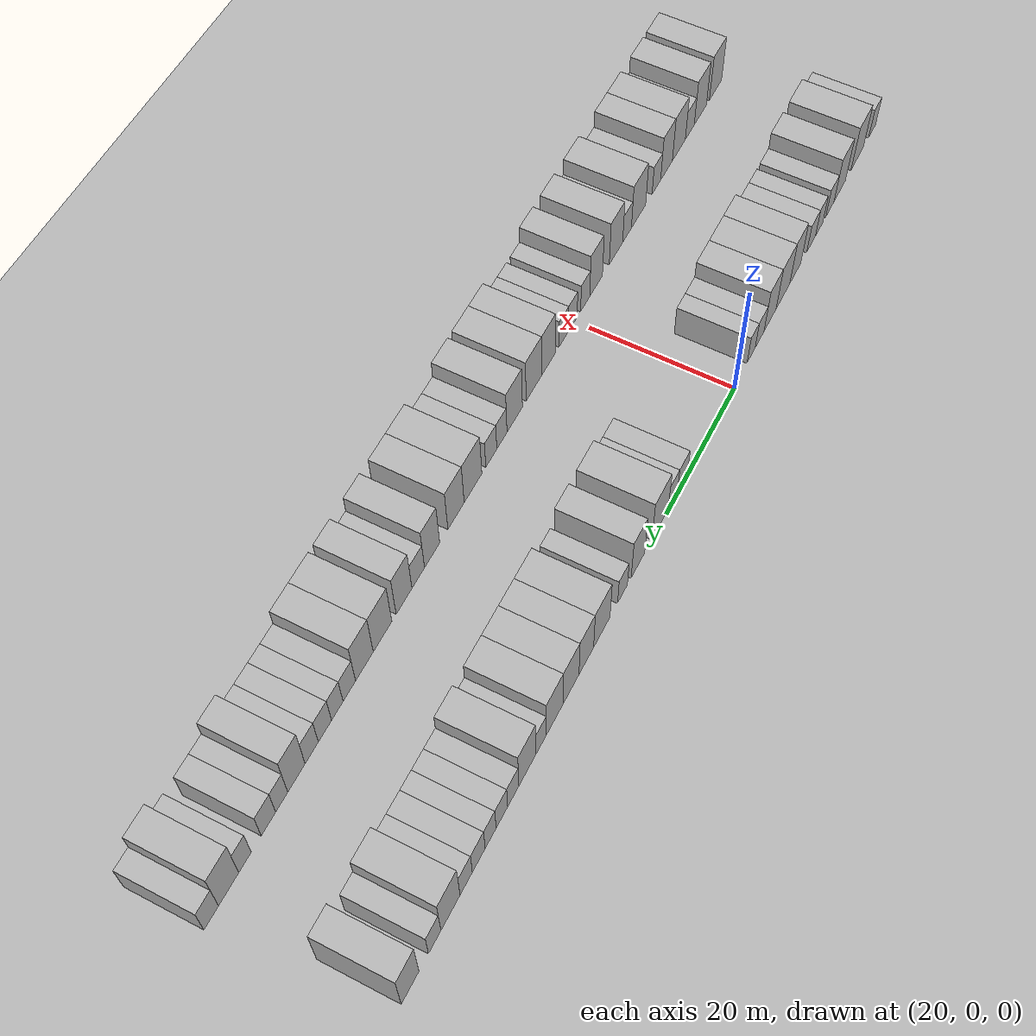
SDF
<sdf version="1.6">
 <world name="default">
  <include><name>ground_plane_1</name><uri>model://HANNAS_ground_plane</uri></include>
  <include>
   <name>ground_plane_2</name>
   <uri>model://HANNAS_ground_plane</uri>
   <pose>100 0 0  0 0 0</pose>
  </include>
  <model name="building_41">
   <static>1</static>
   <pose>25.0000 -46.1972 0 0.000000 0.000000 0.000000</pose>
   <link name="link">
    <pose>0 0 3.00 0 0 0</pose>
    <collision name="collision"><geometry><box><size>10.0000 2.5414 6.0000</size></box></geometry></collision>
    <visual name="visual">
     <cast_shadows>0</cast_shadows>
     <geometry><box><size>10.0000 2.5414 6.0000</size></box></geometry>
     <material>
      <script>
       <uri>model://HANNAS_wall/materials/scripts</uri>
       <uri>model://HANNAS_wall/materials/textures</uri>
       <name>vrc/HANNAS_wall</name>
      </script>
     </material>
    </visual>
   </link>
  </model>
  <model name="building_42">
   <static>1</static>
   <pose>25.0000 -40.7090 0 0.000000 0.000000 0.000000</pose>
   <link name="link">
    <pose>0 0 4.50 0 0 0</pose>
    <collision name="collision"><geometry><box><size>10.0000 4.4350 9.0000</size></box></geometry></collision>
    <visual name="visual">
     <cast_shadows>0</cast_shadows>
     <geometry><box><size>10.0000 4.4350 9.0000</size></box></geometry>
     <material>
      <script>
       <uri>model://HANNAS_wall/materials/scripts</uri>
       <uri>model://HANNAS_wall/materials/textures</uri>
       <name>vrc/HANNAS_wall</name>
      </script>
     </material>
    </visual>
   </link>
  </model>
  <model name="building_43">
   <static>1</static>
   <pose>25.0000 -34.4842 0 0.000000 0.000000 0.000000</pose>
   <link name="link">
    <pose>0 0 4.50 0 0 0</pose>
    <collision name="collision"><geometry><box><size>10.0000 4.0146 9.0000</size></box></geometry></collision>
    <visual name="visual">
     <cast_shadows>0</cast_shadows>
     <geometry><box><size>10.0000 4.0146 9.0000</size></box></geometry>
     <material>
      <script>
       <uri>model://HANNAS_wall/materials/scripts</uri>
       <uri>model://HANNAS_wall/materials/textures</uri>
       <name>vrc/HANNAS_wall</name>
      </script>
     </material>
    </visual>
   </link>
  </model>
  <model name="building_44">
   <static>1</static>
   <pose>25.0000 -31.0404 0 0.000000 0.000000 0.000000</pose>
   <link name="link">
    <pose>0 0 3.00 0 0 0</pose>
    <collision name="collision"><geometry><box><size>10.0000 2.8728 6.0000</size></box></geometry></collision>
    <visual name="visual">
     <cast_shadows>0</cast_shadows>
     <geometry><box><size>10.0000 2.8728 6.0000</size></box></geometry>
     <material>
      <script>
       <uri>model://HANNAS_wall/materials/scripts</uri>
       <uri>model://HANNAS_wall/materials/textures</uri>
       <name>vrc/HANNAS_wall</name>
      </script>
     </material>
    </visual>
   </link>
  </model>
  <model name="building_45">
   <static>1</static>
   <pose>25.0000 -27.3285 0 0.000000 0.000000 0.000000</pose>
   <link name="link">
    <pose>0 0 3.00 0 0 0</pose>
    <collision name="collision"><geometry><box><size>10.0000 2.5510 6.0000</size></box></geometry></collision>
    <visual name="visual">
     <cast_shadows>0</cast_shadows>
     <geometry><box><size>10.0000 2.5510 6.0000</size></box></geometry>
     <material>
      <script>
       <uri>model://HANNAS_wall/materials/scripts</uri>
       <uri>model://HANNAS_wall/materials/textures</uri>
       <name>vrc/HANNAS_wall</name>
      </script>
     </material>
    </visual>
   </link>
  </model>
  <model name="building_46">
   <static>1</static>
   <pose>25.0000 -24.5753 0 0.000000 0.000000 0.000000</pose>
   <link name="link">
    <pose>0 0 3.00 0 0 0</pose>
    <collision name="collision"><geometry><box><size>10.0000 2.9554 6.0000</size></box></geometry></collision>
    <visual name="visual">
     <cast_shadows>0</cast_shadows>
     <geometry><box><size>10.0000 2.9554 6.0000</size></box></geometry>
     <material>
      <script>
       <uri>model://HANNAS_wall/materials/scripts</uri>
       <uri>model://HANNAS_wall/materials/textures</uri>
       <name>vrc/HANNAS_wall</name>
      </script>
     </material>
    </visual>
   </link>
  </model>
  <model name="building_47">
   <static>1</static>
   <pose>25.0000 -19.2505 0 0.000000 0.000000 0.000000</pose>
   <link name="link">
    <pose>0 0 4.50 0 0 0</pose>
    <collision name="collision"><geometry><box><size>10.0000 3.6943 9.0000</size></box></geometry></collision>
    <visual name="visual">
     <cast_shadows>0</cast_shadows>
     <geometry><box><size>10.0000 3.6943 9.0000</size></box></geometry>
     <material>
      <script>
       <uri>model://HANNAS_wall/materials/scripts</uri>
       <uri>model://HANNAS_wall/materials/textures</uri>
       <name>vrc/HANNAS_wall</name>
      </script>
     </material>
    </visual>
   </link>
  </model>
  <model name="building_48">
   <static>1</static>
   <pose>25.0000 -15.1972 0 0.000000 0.000000 0.000000</pose>
   <link name="link">
    <pose>0 0 4.50 0 0 0</pose>
    <collision name="collision"><geometry><box><size>10.0000 4.4121 9.0000</size></box></geometry></collision>
    <visual name="visual">
     <cast_shadows>0</cast_shadows>
     <geometry><box><size>10.0000 4.4121 9.0000</size></box></geometry>
     <material>
      <script>
       <uri>model://HANNAS_wall/materials/scripts</uri>
       <uri>model://HANNAS_wall/materials/textures</uri>
       <name>vrc/HANNAS_wall</name>
      </script>
     </material>
    </visual>
   </link>
  </model>
  <model name="building_49">
   <static>1</static>
   <pose>25.0000 -11.0496 0 0.000000 0.000000 0.000000</pose>
   <link name="link">
    <pose>0 0 4.50 0 0 0</pose>
    <collision name="collision"><geometry><box><size>10.0000 3.8831 9.0000</size></box></geometry></collision>
    <visual name="visual">
     <cast_shadows>0</cast_shadows>
     <geometry><box><size>10.0000 3.8831 9.0000</size></box></geometry>
     <material>
      <script>
       <uri>model://HANNAS_wall/materials/scripts</uri>
       <uri>model://HANNAS_wall/materials/textures</uri>
       <name>vrc/HANNAS_wall</name>
      </script>
     </material>
    </visual>
   </link>
  </model>
  <model name="building_50">
   <static>1</static>
   <pose>25.0000 -7.7061 0 0.000000 0.000000 0.000000</pose>
   <link name="link">
    <pose>0 0 3.00 0 0 0</pose>
    <collision name="collision"><geometry><box><size>10.0000 2.8038 6.0000</size></box></geometry></collision>
    <visual name="visual">
     <cast_shadows>0</cast_shadows>
     <geometry><box><size>10.0000 2.8038 6.0000</size></box></geometry>
     <material>
      <script>
       <uri>model://HANNAS_wall/materials/scripts</uri>
       <uri>model://HANNAS_wall/materials/textures</uri>
       <name>vrc/HANNAS_wall</name>
      </script>
     </material>
    </visual>
   </link>
  </model>
  <model name="building_51">
   <static>1</static>
   <pose>25.0000 -5.0564 0 0.000000 0.000000 0.000000</pose>
   <link name="link">
    <pose>0 0 3.00 0 0 0</pose>
    <collision name="collision"><geometry><box><size>10.0000 2.4957 6.0000</size></box></geometry></collision>
    <visual name="visual">
     <cast_shadows>0</cast_shadows>
     <geometry><box><size>10.0000 2.4957 6.0000</size></box></geometry>
     <material>
      <script>
       <uri>model://HANNAS_wall/materials/scripts</uri>
       <uri>model://HANNAS_wall/materials/textures</uri>
       <name>vrc/HANNAS_wall</name>
      </script>
     </material>
    </visual>
   </link>
  </model>
  <model name="building_52">
   <static>1</static>
   <pose>25.0000 15.5653 0 0.000000 0.000000 0.000000</pose>
   <link name="link">
    <pose>0 0 3.00 0 0 0</pose>
    <collision name="collision"><geometry><box><size>10.0000 2.9159 6.0000</size></box></geometry></collision>
    <visual name="visual">
     <cast_shadows>0</cast_shadows>
     <geometry><box><size>10.0000 2.9159 6.0000</size></box></geometry>
     <material>
      <script>
       <uri>model://HANNAS_wall/materials/scripts</uri>
       <uri>model://HANNAS_wall/materials/textures</uri>
       <name>vrc/HANNAS_wall</name>
      </script>
     </material>
    </visual>
   </link>
  </model>
  <model name="building_53">
   <static>1</static>
   <pose>25.0000 18.3170 0 0.000000 0.000000 0.000000</pose>
   <link name="link">
    <pose>0 0 3.00 0 0 0</pose>
    <collision name="collision"><geometry><box><size>10.0000 2.5877 6.0000</size></box></geometry></collision>
    <visual name="visual">
     <cast_shadows>0</cast_shadows>
     <geometry><box><size>10.0000 2.5877 6.0000</size></box></geometry>
     <material>
      <script>
       <uri>model://HANNAS_wall/materials/scripts</uri>
       <uri>model://HANNAS_wall/materials/textures</uri>
       <name>vrc/HANNAS_wall</name>
      </script>
     </material>
    </visual>
   </link>
  </model>
  <model name="building_54">
   <static>1</static>
   <pose>25.0000 21.8488 0 0.000000 0.000000 0.000000</pose>
   <link name="link">
    <pose>0 0 4.50 0 0 0</pose>
    <collision name="collision"><geometry><box><size>10.0000 4.4759 9.0000</size></box></geometry></collision>
    <visual name="visual">
     <cast_shadows>0</cast_shadows>
     <geometry><box><size>10.0000 4.4759 9.0000</size></box></geometry>
     <material>
      <script>
       <uri>model://HANNAS_wall/materials/scripts</uri>
       <uri>model://HANNAS_wall/materials/textures</uri>
       <name>vrc/HANNAS_wall</name>
      </script>
     </material>
    </visual>
   </link>
  </model>
  <model name="building_55">
   <static>1</static>
   <pose>25.0000 27.9131 0 0.000000 0.000000 0.000000</pose>
   <link name="link">
    <pose>0 0 4.50 0 0 0</pose>
    <collision name="collision"><geometry><box><size>10.0000 3.6527 9.0000</size></box></geometry></collision>
    <visual name="visual">
     <cast_shadows>0</cast_shadows>
     <geometry><box><size>10.0000 3.6527 9.0000</size></box></geometry>
     <material>
      <script>
       <uri>model://HANNAS_wall/materials/scripts</uri>
       <uri>model://HANNAS_wall/materials/textures</uri>
       <name>vrc/HANNAS_wall</name>
      </script>
     </material>
    </visual>
   </link>
  </model>
  <model name="building_56">
   <static>1</static>
   <pose>25.0000 32.0451 0 0.000000 0.000000 0.000000</pose>
   <link name="link">
    <pose>0 0 3.00 0 0 0</pose>
    <collision name="collision"><geometry><box><size>10.0000 2.6112 6.0000</size></box></geometry></collision>
    <visual name="visual">
     <cast_shadows>0</cast_shadows>
     <geometry><box><size>10.0000 2.6112 6.0000</size></box></geometry>
     <material>
      <script>
       <uri>model://HANNAS_wall/materials/scripts</uri>
       <uri>model://HANNAS_wall/materials/textures</uri>
       <name>vrc/HANNAS_wall</name>
      </script>
     </material>
    </visual>
   </link>
  </model>
  <model name="building_57">
   <static>1</static>
   <pose>25.0000 37.4714 0 0.000000 0.000000 0.000000</pose>
   <link name="link">
    <pose>0 0 4.50 0 0 0</pose>
    <collision name="collision"><geometry><box><size>10.0000 4.2415 9.0000</size></box></geometry></collision>
    <visual name="visual">
     <cast_shadows>0</cast_shadows>
     <geometry><box><size>10.0000 4.2415 9.0000</size></box></geometry>
     <material>
      <script>
       <uri>model://HANNAS_wall/materials/scripts</uri>
       <uri>model://HANNAS_wall/materials/textures</uri>
       <name>vrc/HANNAS_wall</name>
      </script>
     </material>
    </visual>
   </link>
  </model>
  <model name="building_58">
   <static>1</static>
   <pose>25.0000 41.4529 0 0.000000 0.000000 0.000000</pose>
   <link name="link">
    <pose>0 0 4.50 0 0 0</pose>
    <collision name="collision"><geometry><box><size>10.0000 3.7214 9.0000</size></box></geometry></collision>
    <visual name="visual">
     <cast_shadows>0</cast_shadows>
     <geometry><box><size>10.0000 3.7214 9.0000</size></box></geometry>
     <material>
      <script>
       <uri>model://HANNAS_wall/materials/scripts</uri>
       <uri>model://HANNAS_wall/materials/textures</uri>
       <name>vrc/HANNAS_wall</name>
      </script>
     </material>
    </visual>
   </link>
  </model>
  <model name="building_59">
   <static>1</static>
   <pose>25.0000 45.3034 0 0.000000 0.000000 0.000000</pose>
   <link name="link">
    <pose>0 0 4.50 0 0 0</pose>
    <collision name="collision"><geometry><box><size>10.0000 3.9796 9.0000</size></box></geometry></collision>
    <visual name="visual">
     <cast_shadows>0</cast_shadows>
     <geometry><box><size>10.0000 3.9796 9.0000</size></box></geometry>
     <material>
      <script>
       <uri>model://HANNAS_wall/materials/scripts</uri>
       <uri>model://HANNAS_wall/materials/textures</uri>
       <name>vrc/HANNAS_wall</name>
      </script>
     </material>
    </visual>
   </link>
  </model>
  <model name="building_60">
   <static>1</static>
   <pose>25.0000 49.3481 0 0.000000 0.000000 0.000000</pose>
   <link name="link">
    <pose>0 0 4.50 0 0 0</pose>
    <collision name="collision"><geometry><box><size>10.0000 4.1098 9.0000</size></box></geometry></collision>
    <visual name="visual">
     <cast_shadows>0</cast_shadows>
     <geometry><box><size>10.0000 4.1098 9.0000</size></box></geometry>
     <material>
      <script>
       <uri>model://HANNAS_wall/materials/scripts</uri>
       <uri>model://HANNAS_wall/materials/textures</uri>
       <name>vrc/HANNAS_wall</name>
      </script>
     </material>
    </visual>
   </link>
  </model>
  <model name="building_61">
   <static>1</static>
   <pose>25.0000 52.6448 0 0.000000 0.000000 0.000000</pose>
   <link name="link">
    <pose>0 0 3.00 0 0 0</pose>
    <collision name="collision"><geometry><box><size>10.0000 2.4836 6.0000</size></box></geometry></collision>
    <visual name="visual">
     <cast_shadows>0</cast_shadows>
     <geometry><box><size>10.0000 2.4836 6.0000</size></box></geometry>
     <material>
      <script>
       <uri>model://HANNAS_wall/materials/scripts</uri>
       <uri>model://HANNAS_wall/materials/textures</uri>
       <name>vrc/HANNAS_wall</name>
      </script>
     </material>
    </visual>
   </link>
  </model>
  <model name="building_62">
   <static>1</static>
   <pose>25.0000 55.9288 0 0.000000 0.000000 0.000000</pose>
   <link name="link">
    <pose>0 0 4.50 0 0 0</pose>
    <collision name="collision"><geometry><box><size>10.0000 4.0844 9.0000</size></box></geometry></collision>
    <visual name="visual">
     <cast_shadows>0</cast_shadows>
     <geometry><box><size>10.0000 4.0844 9.0000</size></box></geometry>
     <material>
      <script>
       <uri>model://HANNAS_wall/materials/scripts</uri>
       <uri>model://HANNAS_wall/materials/textures</uri>
       <name>vrc/HANNAS_wall</name>
      </script>
     </material>
    </visual>
   </link>
  </model>
  <model name="building_63">
   <static>1</static>
   <pose>25.0000 59.2837 0 0.000000 0.000000 0.000000</pose>
   <link name="link">
    <pose>0 0 3.00 0 0 0</pose>
    <collision name="collision"><geometry><box><size>10.0000 2.6255 6.0000</size></box></geometry></collision>
    <visual name="visual">
     <cast_shadows>0</cast_shadows>
     <geometry><box><size>10.0000 2.6255 6.0000</size></box></geometry>
     <material>
      <script>
       <uri>model://HANNAS_wall/materials/scripts</uri>
       <uri>model://HANNAS_wall/materials/textures</uri>
       <name>vrc/HANNAS_wall</name>
      </script>
     </material>
    </visual>
   </link>
  </model>
  <model name="building_64">
   <static>1</static>
   <pose>25.0000 61.9280 0 0.000000 0.000000 0.000000</pose>
   <link name="link">
    <pose>0 0 3.00 0 0 0</pose>
    <collision name="collision"><geometry><box><size>10.0000 2.6632 6.0000</size></box></geometry></collision>
    <visual name="visual">
     <cast_shadows>0</cast_shadows>
     <geometry><box><size>10.0000 2.6632 6.0000</size></box></geometry>
     <material>
      <script>
       <uri>model://HANNAS_wall/materials/scripts</uri>
       <uri>model://HANNAS_wall/materials/textures</uri>
       <name>vrc/HANNAS_wall</name>
      </script>
     </material>
    </visual>
   </link>
  </model>
  <model name="building_65">
   <static>1</static>
   <pose>25.0000 64.5091 0 0.000000 0.000000 0.000000</pose>
   <link name="link">
    <pose>0 0 3.00 0 0 0</pose>
    <collision name="collision"><geometry><box><size>10.0000 2.4990 6.0000</size></box></geometry></collision>
    <visual name="visual">
     <cast_shadows>0</cast_shadows>
     <geometry><box><size>10.0000 2.4990 6.0000</size></box></geometry>
     <material>
      <script>
       <uri>model://HANNAS_wall/materials/scripts</uri>
       <uri>model://HANNAS_wall/materials/textures</uri>
       <name>vrc/HANNAS_wall</name>
      </script>
     </material>
    </visual>
   </link>
  </model>
  <model name="building_66">
   <static>1</static>
   <pose>25.0000 67.1995 0 0.000000 0.000000 0.000000</pose>
   <link name="link">
    <pose>0 0 3.00 0 0 0</pose>
    <collision name="collision"><geometry><box><size>10.0000 2.8817 6.0000</size></box></geometry></collision>
    <visual name="visual">
     <cast_shadows>0</cast_shadows>
     <geometry><box><size>10.0000 2.8817 6.0000</size></box></geometry>
     <material>
      <script>
       <uri>model://HANNAS_wall/materials/scripts</uri>
       <uri>model://HANNAS_wall/materials/textures</uri>
       <name>vrc/HANNAS_wall</name>
      </script>
     </material>
    </visual>
   </link>
  </model>
  <model name="building_67">
   <static>1</static>
   <pose>25.0000 70.0062 0 0.000000 0.000000 0.000000</pose>
   <link name="link">
    <pose>0 0 3.00 0 0 0</pose>
    <collision name="collision"><geometry><box><size>10.0000 2.7318 6.0000</size></box></geometry></collision>
    <visual name="visual">
     <cast_shadows>0</cast_shadows>
     <geometry><box><size>10.0000 2.7318 6.0000</size></box></geometry>
     <material>
      <script>
       <uri>model://HANNAS_wall/materials/scripts</uri>
       <uri>model://HANNAS_wall/materials/textures</uri>
       <name>vrc/HANNAS_wall</name>
      </script>
     </material>
    </visual>
   </link>
  </model>
  <model name="building_68">
   <static>1</static>
   <pose>25.0000 73.4541 0 0.000000 0.000000 0.000000</pose>
   <link name="link">
    <pose>0 0 4.50 0 0 0</pose>
    <collision name="collision"><geometry><box><size>10.0000 4.1640 9.0000</size></box></geometry></collision>
    <visual name="visual">
     <cast_shadows>0</cast_shadows>
     <geometry><box><size>10.0000 4.1640 9.0000</size></box></geometry>
     <material>
      <script>
       <uri>model://HANNAS_wall/materials/scripts</uri>
       <uri>model://HANNAS_wall/materials/textures</uri>
       <name>vrc/HANNAS_wall</name>
      </script>
     </material>
    </visual>
   </link>
  </model>
  <model name="building_69">
   <static>1</static>
   <pose>25.0000 76.8797 0 0.000000 0.000000 0.000000</pose>
   <link name="link">
    <pose>0 0 3.00 0 0 0</pose>
    <collision name="collision"><geometry><box><size>10.0000 2.6872 6.0000</size></box></geometry></collision>
    <visual name="visual">
     <cast_shadows>0</cast_shadows>
     <geometry><box><size>10.0000 2.6872 6.0000</size></box></geometry>
     <material>
      <script>
       <uri>model://HANNAS_wall/materials/scripts</uri>
       <uri>model://HANNAS_wall/materials/textures</uri>
       <name>vrc/HANNAS_wall</name>
      </script>
     </material>
    </visual>
   </link>
  </model>
  <model name="building_70">
   <static>1</static>
   <pose>25.0000 82.0741 0 0.000000 0.000000 0.000000</pose>
   <link name="link">
    <pose>0 0 4.50 0 0 0</pose>
    <collision name="collision"><geometry><box><size>10.0000 3.7015 9.0000</size></box></geometry></collision>
    <visual name="visual">
     <cast_shadows>0</cast_shadows>
     <geometry><box><size>10.0000 3.7015 9.0000</size></box></geometry>
     <material>
      <script>
       <uri>model://HANNAS_wall/materials/scripts</uri>
       <uri>model://HANNAS_wall/materials/textures</uri>
       <name>vrc/HANNAS_wall</name>
      </script>
     </material>
    </visual>
   </link>
  </model>
  <model name="building_127">
   <static>1</static>
   <pose>47.0000 -43.2594 0 0.000000 0.000000 0.000000</pose>
   <link name="link">
    <pose>0 0 4.50 0 0 0</pose>
    <collision name="collision"><geometry><box><size>10.0000 4.0991 9.0000</size></box></geometry></collision>
    <visual name="visual">
     <cast_shadows>0</cast_shadows>
     <geometry><box><size>10.0000 4.0991 9.0000</size></box></geometry>
     <material>
      <script>
       <uri>model://HANNAS_wall/materials/scripts</uri>
       <uri>model://HANNAS_wall/materials/textures</uri>
       <name>vrc/HANNAS_wall</name>
      </script>
     </material>
    </visual>
   </link>
  </model>
  <model name="building_128">
   <static>1</static>
   <pose>47.0000 -38.2052 0 0.000000 0.000000 0.000000</pose>
   <link name="link">
    <pose>0 0 4.50 0 0 0</pose>
    <collision name="collision"><geometry><box><size>10.0000 4.0093 9.0000</size></box></geometry></collision>
    <visual name="visual">
     <cast_shadows>0</cast_shadows>
     <geometry><box><size>10.0000 4.0093 9.0000</size></box></geometry>
     <material>
      <script>
       <uri>model://HANNAS_wall/materials/scripts</uri>
       <uri>model://HANNAS_wall/materials/textures</uri>
       <name>vrc/HANNAS_wall</name>
      </script>
     </material>
    </visual>
   </link>
  </model>
  <model name="building_129">
   <static>1</static>
   <pose>47.0000 -34.7415 0 0.000000 0.000000 0.000000</pose>
   <link name="link">
    <pose>0 0 3.00 0 0 0</pose>
    <collision name="collision"><geometry><box><size>10.0000 2.9180 6.0000</size></box></geometry></collision>
    <visual name="visual">
     <cast_shadows>0</cast_shadows>
     <geometry><box><size>10.0000 2.9180 6.0000</size></box></geometry>
     <material>
      <script>
       <uri>model://HANNAS_wall/materials/scripts</uri>
       <uri>model://HANNAS_wall/materials/textures</uri>
       <name>vrc/HANNAS_wall</name>
      </script>
     </material>
    </visual>
   </link>
  </model>
  <model name="building_130">
   <static>1</static>
   <pose>47.0000 -31.2075 0 0.000000 0.000000 0.000000</pose>
   <link name="link">
    <pose>0 0 4.50 0 0 0</pose>
    <collision name="collision"><geometry><box><size>10.0000 4.1500 9.0000</size></box></geometry></collision>
    <visual name="visual">
     <cast_shadows>0</cast_shadows>
     <geometry><box><size>10.0000 4.1500 9.0000</size></box></geometry>
     <material>
      <script>
       <uri>model://HANNAS_wall/materials/scripts</uri>
       <uri>model://HANNAS_wall/materials/textures</uri>
       <name>vrc/HANNAS_wall</name>
      </script>
     </material>
    </visual>
   </link>
  </model>
  <model name="building_131">
   <static>1</static>
   <pose>47.0000 -27.2672 0 0.000000 0.000000 0.000000</pose>
   <link name="link">
    <pose>0 0 4.50 0 0 0</pose>
    <collision name="collision"><geometry><box><size>10.0000 3.7306 9.0000</size></box></geometry></collision>
    <visual name="visual">
     <cast_shadows>0</cast_shadows>
     <geometry><box><size>10.0000 3.7306 9.0000</size></box></geometry>
     <material>
      <script>
       <uri>model://HANNAS_wall/materials/scripts</uri>
       <uri>model://HANNAS_wall/materials/textures</uri>
       <name>vrc/HANNAS_wall</name>
      </script>
     </material>
    </visual>
   </link>
  </model>
  <model name="building_132">
   <static>1</static>
   <pose>47.0000 -24.0720 0 0.000000 0.000000 0.000000</pose>
   <link name="link">
    <pose>0 0 3.00 0 0 0</pose>
    <collision name="collision"><geometry><box><size>10.0000 2.6598 6.0000</size></box></geometry></collision>
    <visual name="visual">
     <cast_shadows>0</cast_shadows>
     <geometry><box><size>10.0000 2.6598 6.0000</size></box></geometry>
     <material>
      <script>
       <uri>model://HANNAS_wall/materials/scripts</uri>
       <uri>model://HANNAS_wall/materials/textures</uri>
       <name>vrc/HANNAS_wall</name>
      </script>
     </material>
    </visual>
   </link>
  </model>
  <model name="building_133">
   <static>1</static>
   <pose>47.0000 -18.5558 0 0.000000 0.000000 0.000000</pose>
   <link name="link">
    <pose>0 0 4.50 0 0 0</pose>
    <collision name="collision"><geometry><box><size>10.0000 4.3724 9.0000</size></box></geometry></collision>
    <visual name="visual">
     <cast_shadows>0</cast_shadows>
     <geometry><box><size>10.0000 4.3724 9.0000</size></box></geometry>
     <material>
      <script>
       <uri>model://HANNAS_wall/materials/scripts</uri>
       <uri>model://HANNAS_wall/materials/textures</uri>
       <name>vrc/HANNAS_wall</name>
      </script>
     </material>
    </visual>
   </link>
  </model>
  <model name="building_134">
   <static>1</static>
   <pose>47.0000 -15.0425 0 0.000000 0.000000 0.000000</pose>
   <link name="link">
    <pose>0 0 3.00 0 0 0</pose>
    <collision name="collision"><geometry><box><size>10.0000 2.6542 6.0000</size></box></geometry></collision>
    <visual name="visual">
     <cast_shadows>0</cast_shadows>
     <geometry><box><size>10.0000 2.6542 6.0000</size></box></geometry>
     <material>
      <script>
       <uri>model://HANNAS_wall/materials/scripts</uri>
       <uri>model://HANNAS_wall/materials/textures</uri>
       <name>vrc/HANNAS_wall</name>
      </script>
     </material>
    </visual>
   </link>
  </model>
  <model name="building_135">
   <static>1</static>
   <pose>47.0000 -11.7225 0 0.000000 0.000000 0.000000</pose>
   <link name="link">
    <pose>0 0 4.50 0 0 0</pose>
    <collision name="collision"><geometry><box><size>10.0000 3.9857 9.0000</size></box></geometry></collision>
    <visual name="visual">
     <cast_shadows>0</cast_shadows>
     <geometry><box><size>10.0000 3.9857 9.0000</size></box></geometry>
     <material>
      <script>
       <uri>model://HANNAS_wall/materials/scripts</uri>
       <uri>model://HANNAS_wall/materials/textures</uri>
       <name>vrc/HANNAS_wall</name>
      </script>
     </material>
    </visual>
   </link>
  </model>
  <model name="building_136">
   <static>1</static>
   <pose>47.0000 -5.8802 0 0.000000 0.000000 0.000000</pose>
   <link name="link">
    <pose>0 0 4.50 0 0 0</pose>
    <collision name="collision"><geometry><box><size>10.0000 3.6989 9.0000</size></box></geometry></collision>
    <visual name="visual">
     <cast_shadows>0</cast_shadows>
     <geometry><box><size>10.0000 3.6989 9.0000</size></box></geometry>
     <material>
      <script>
       <uri>model://HANNAS_wall/materials/scripts</uri>
       <uri>model://HANNAS_wall/materials/textures</uri>
       <name>vrc/HANNAS_wall</name>
      </script>
     </material>
    </visual>
   </link>
  </model>
  <model name="building_137">
   <static>1</static>
   <pose>47.0000 -2.7296 0 0.000000 0.000000 0.000000</pose>
   <link name="link">
    <pose>0 0 3.00 0 0 0</pose>
    <collision name="collision"><geometry><box><size>10.0000 2.6023 6.0000</size></box></geometry></collision>
    <visual name="visual">
     <cast_shadows>0</cast_shadows>
     <geometry><box><size>10.0000 2.6023 6.0000</size></box></geometry>
     <material>
      <script>
       <uri>model://HANNAS_wall/materials/scripts</uri>
       <uri>model://HANNAS_wall/materials/textures</uri>
       <name>vrc/HANNAS_wall</name>
      </script>
     </material>
    </visual>
   </link>
  </model>
  <model name="building_138">
   <static>1</static>
   <pose>47.0000 0.8027 0 0.000000 0.000000 0.000000</pose>
   <link name="link">
    <pose>0 0 3.00 0 0 0</pose>
    <collision name="collision"><geometry><box><size>10.0000 2.4622 6.0000</size></box></geometry></collision>
    <visual name="visual">
     <cast_shadows>0</cast_shadows>
     <geometry><box><size>10.0000 2.4622 6.0000</size></box></geometry>
     <material>
      <script>
       <uri>model://HANNAS_wall/materials/scripts</uri>
       <uri>model://HANNAS_wall/materials/textures</uri>
       <name>vrc/HANNAS_wall</name>
      </script>
     </material>
    </visual>
   </link>
  </model>
  <model name="building_139">
   <static>1</static>
   <pose>47.0000 3.3462 0 0.000000 0.000000 0.000000</pose>
   <link name="link">
    <pose>0 0 3.00 0 0 0</pose>
    <collision name="collision"><geometry><box><size>10.0000 2.6249 6.0000</size></box></geometry></collision>
    <visual name="visual">
     <cast_shadows>0</cast_shadows>
     <geometry><box><size>10.0000 2.6249 6.0000</size></box></geometry>
     <material>
      <script>
       <uri>model://HANNAS_wall/materials/scripts</uri>
       <uri>model://HANNAS_wall/materials/textures</uri>
       <name>vrc/HANNAS_wall</name>
      </script>
     </material>
    </visual>
   </link>
  </model>
  <model name="building_140">
   <static>1</static>
   <pose>47.0000 7.5264 0 0.000000 0.000000 0.000000</pose>
   <link name="link">
    <pose>0 0 4.50 0 0 0</pose>
    <collision name="collision"><geometry><box><size>10.0000 3.7354 9.0000</size></box></geometry></collision>
    <visual name="visual">
     <cast_shadows>0</cast_shadows>
     <geometry><box><size>10.0000 3.7354 9.0000</size></box></geometry>
     <material>
      <script>
       <uri>model://HANNAS_wall/materials/scripts</uri>
       <uri>model://HANNAS_wall/materials/textures</uri>
       <name>vrc/HANNAS_wall</name>
      </script>
     </material>
    </visual>
   </link>
  </model>
  <model name="building_141">
   <static>1</static>
   <pose>47.0000 11.5310 0 0.000000 0.000000 0.000000</pose>
   <link name="link">
    <pose>0 0 4.50 0 0 0</pose>
    <collision name="collision"><geometry><box><size>10.0000 4.2737 9.0000</size></box></geometry></collision>
    <visual name="visual">
     <cast_shadows>0</cast_shadows>
     <geometry><box><size>10.0000 4.2737 9.0000</size></box></geometry>
     <material>
      <script>
       <uri>model://HANNAS_wall/materials/scripts</uri>
       <uri>model://HANNAS_wall/materials/textures</uri>
       <name>vrc/HANNAS_wall</name>
      </script>
     </material>
    </visual>
   </link>
  </model>
  <model name="building_142">
   <static>1</static>
   <pose>47.0000 16.7043 0 0.000000 0.000000 0.000000</pose>
   <link name="link">
    <pose>0 0 4.50 0 0 0</pose>
    <collision name="collision"><geometry><box><size>10.0000 4.0728 9.0000</size></box></geometry></collision>
    <visual name="visual">
     <cast_shadows>0</cast_shadows>
     <geometry><box><size>10.0000 4.0728 9.0000</size></box></geometry>
     <material>
      <script>
       <uri>model://HANNAS_wall/materials/scripts</uri>
       <uri>model://HANNAS_wall/materials/textures</uri>
       <name>vrc/HANNAS_wall</name>
      </script>
     </material>
    </visual>
   </link>
  </model>
  <model name="building_143">
   <static>1</static>
   <pose>47.0000 20.0762 0 0.000000 0.000000 0.000000</pose>
   <link name="link">
    <pose>0 0 3.00 0 0 0</pose>
    <collision name="collision"><geometry><box><size>10.0000 2.6710 6.0000</size></box></geometry></collision>
    <visual name="visual">
     <cast_shadows>0</cast_shadows>
     <geometry><box><size>10.0000 2.6710 6.0000</size></box></geometry>
     <material>
      <script>
       <uri>model://HANNAS_wall/materials/scripts</uri>
       <uri>model://HANNAS_wall/materials/textures</uri>
       <name>vrc/HANNAS_wall</name>
      </script>
     </material>
    </visual>
   </link>
  </model>
  <model name="building_144">
   <static>1</static>
   <pose>47.0000 22.8278 0 0.000000 0.000000 0.000000</pose>
   <link name="link">
    <pose>0 0 3.00 0 0 0</pose>
    <collision name="collision"><geometry><box><size>10.0000 2.8322 6.0000</size></box></geometry></collision>
    <visual name="visual">
     <cast_shadows>0</cast_shadows>
     <geometry><box><size>10.0000 2.8322 6.0000</size></box></geometry>
     <material>
      <script>
       <uri>model://HANNAS_wall/materials/scripts</uri>
       <uri>model://HANNAS_wall/materials/textures</uri>
       <name>vrc/HANNAS_wall</name>
      </script>
     </material>
    </visual>
   </link>
  </model>
  <model name="building_145">
   <static>1</static>
   <pose>47.0000 27.4790 0 0.000000 0.000000 0.000000</pose>
   <link name="link">
    <pose>0 0 4.50 0 0 0</pose>
    <collision name="collision"><geometry><box><size>10.0000 4.4701 9.0000</size></box></geometry></collision>
    <visual name="visual">
     <cast_shadows>0</cast_shadows>
     <geometry><box><size>10.0000 4.4701 9.0000</size></box></geometry>
     <material>
      <script>
       <uri>model://HANNAS_wall/materials/scripts</uri>
       <uri>model://HANNAS_wall/materials/textures</uri>
       <name>vrc/HANNAS_wall</name>
      </script>
     </material>
    </visual>
   </link>
  </model>
  <model name="building_146">
   <static>1</static>
   <pose>47.0000 31.7321 0 0.000000 0.000000 0.000000</pose>
   <link name="link">
    <pose>0 0 4.50 0 0 0</pose>
    <collision name="collision"><geometry><box><size>10.0000 4.0360 9.0000</size></box></geometry></collision>
    <visual name="visual">
     <cast_shadows>0</cast_shadows>
     <geometry><box><size>10.0000 4.0360 9.0000</size></box></geometry>
     <material>
      <script>
       <uri>model://HANNAS_wall/materials/scripts</uri>
       <uri>model://HANNAS_wall/materials/textures</uri>
       <name>vrc/HANNAS_wall</name>
      </script>
     </material>
    </visual>
   </link>
  </model>
  <model name="building_147">
   <static>1</static>
   <pose>47.0000 37.5798 0 0.000000 0.000000 0.000000</pose>
   <link name="link">
    <pose>0 0 4.50 0 0 0</pose>
    <collision name="collision"><geometry><box><size>10.0000 3.6594 9.0000</size></box></geometry></collision>
    <visual name="visual">
     <cast_shadows>0</cast_shadows>
     <geometry><box><size>10.0000 3.6594 9.0000</size></box></geometry>
     <material>
      <script>
       <uri>model://HANNAS_wall/materials/scripts</uri>
       <uri>model://HANNAS_wall/materials/textures</uri>
       <name>vrc/HANNAS_wall</name>
      </script>
     </material>
    </visual>
   </link>
  </model>
  <model name="building_148">
   <static>1</static>
   <pose>47.0000 40.9084 0 0.000000 0.000000 0.000000</pose>
   <link name="link">
    <pose>0 0 3.00 0 0 0</pose>
    <collision name="collision"><geometry><box><size>10.0000 2.9980 6.0000</size></box></geometry></collision>
    <visual name="visual">
     <cast_shadows>0</cast_shadows>
     <geometry><box><size>10.0000 2.9980 6.0000</size></box></geometry>
     <material>
      <script>
       <uri>model://HANNAS_wall/materials/scripts</uri>
       <uri>model://HANNAS_wall/materials/textures</uri>
       <name>vrc/HANNAS_wall</name>
      </script>
     </material>
    </visual>
   </link>
  </model>
  <model name="building_149">
   <static>1</static>
   <pose>47.0000 44.2568 0 0.000000 0.000000 0.000000</pose>
   <link name="link">
    <pose>0 0 4.50 0 0 0</pose>
    <collision name="collision"><geometry><box><size>10.0000 3.6987 9.0000</size></box></geometry></collision>
    <visual name="visual">
     <cast_shadows>0</cast_shadows>
     <geometry><box><size>10.0000 3.6987 9.0000</size></box></geometry>
     <material>
      <script>
       <uri>model://HANNAS_wall/materials/scripts</uri>
       <uri>model://HANNAS_wall/materials/textures</uri>
       <name>vrc/HANNAS_wall</name>
      </script>
     </material>
    </visual>
   </link>
  </model>
  <model name="building_150">
   <static>1</static>
   <pose>47.0000 49.2364 0 0.000000 0.000000 0.000000</pose>
   <link name="link">
    <pose>0 0 4.50 0 0 0</pose>
    <collision name="collision"><geometry><box><size>10.0000 4.2606 9.0000</size></box></geometry></collision>
    <visual name="visual">
     <cast_shadows>0</cast_shadows>
     <geometry><box><size>10.0000 4.2606 9.0000</size></box></geometry>
     <material>
      <script>
       <uri>model://HANNAS_wall/materials/scripts</uri>
       <uri>model://HANNAS_wall/materials/textures</uri>
       <name>vrc/HANNAS_wall</name>
      </script>
     </material>
    </visual>
   </link>
  </model>
  <model name="building_151">
   <static>1</static>
   <pose>47.0000 53.3556 0 0.000000 0.000000 0.000000</pose>
   <link name="link">
    <pose>0 0 4.50 0 0 0</pose>
    <collision name="collision"><geometry><box><size>10.0000 3.9778 9.0000</size></box></geometry></collision>
    <visual name="visual">
     <cast_shadows>0</cast_shadows>
     <geometry><box><size>10.0000 3.9778 9.0000</size></box></geometry>
     <material>
      <script>
       <uri>model://HANNAS_wall/materials/scripts</uri>
       <uri>model://HANNAS_wall/materials/textures</uri>
       <name>vrc/HANNAS_wall</name>
      </script>
     </material>
    </visual>
   </link>
  </model>
  <model name="building_152">
   <static>1</static>
   <pose>47.0000 56.7275 0 0.000000 0.000000 0.000000</pose>
   <link name="link">
    <pose>0 0 3.00 0 0 0</pose>
    <collision name="collision"><geometry><box><size>10.0000 2.7658 6.0000</size></box></geometry></collision>
    <visual name="visual">
     <cast_shadows>0</cast_shadows>
     <geometry><box><size>10.0000 2.7658 6.0000</size></box></geometry>
     <material>
      <script>
       <uri>model://HANNAS_wall/materials/scripts</uri>
       <uri>model://HANNAS_wall/materials/textures</uri>
       <name>vrc/HANNAS_wall</name>
      </script>
     </material>
    </visual>
   </link>
  </model>
  <model name="building_153">
   <static>1</static>
   <pose>47.0000 59.3707 0 0.000000 0.000000 0.000000</pose>
   <link name="link">
    <pose>0 0 3.00 0 0 0</pose>
    <collision name="collision"><geometry><box><size>10.0000 2.5206 6.0000</size></box></geometry></collision>
    <visual name="visual">
     <cast_shadows>0</cast_shadows>
     <geometry><box><size>10.0000 2.5206 6.0000</size></box></geometry>
     <material>
      <script>
       <uri>model://HANNAS_wall/materials/scripts</uri>
       <uri>model://HANNAS_wall/materials/textures</uri>
       <name>vrc/HANNAS_wall</name>
      </script>
     </material>
    </visual>
   </link>
  </model>
  <model name="building_154">
   <static>1</static>
   <pose>47.0000 62.0552 0 0.000000 0.000000 0.000000</pose>
   <link name="link">
    <pose>0 0 3.00 0 0 0</pose>
    <collision name="collision"><geometry><box><size>10.0000 2.8485 6.0000</size></box></geometry></collision>
    <visual name="visual">
     <cast_shadows>0</cast_shadows>
     <geometry><box><size>10.0000 2.8485 6.0000</size></box></geometry>
     <material>
      <script>
       <uri>model://HANNAS_wall/materials/scripts</uri>
       <uri>model://HANNAS_wall/materials/textures</uri>
       <name>vrc/HANNAS_wall</name>
      </script>
     </material>
    </visual>
   </link>
  </model>
  <model name="building_155">
   <static>1</static>
   <pose>47.0000 64.8820 0 0.000000 0.000000 0.000000</pose>
   <link name="link">
    <pose>0 0 3.00 0 0 0</pose>
    <collision name="collision"><geometry><box><size>10.0000 2.8050 6.0000</size></box></geometry></collision>
    <visual name="visual">
     <cast_shadows>0</cast_shadows>
     <geometry><box><size>10.0000 2.8050 6.0000</size></box></geometry>
     <material>
      <script>
       <uri>model://HANNAS_wall/materials/scripts</uri>
       <uri>model://HANNAS_wall/materials/textures</uri>
       <name>vrc/HANNAS_wall</name>
      </script>
     </material>
    </visual>
   </link>
  </model>
  <model name="building_156">
   <static>1</static>
   <pose>47.0000 68.1056 0 0.000000 0.000000 0.000000</pose>
   <link name="link">
    <pose>0 0 4.50 0 0 0</pose>
    <collision name="collision"><geometry><box><size>10.0000 3.6422 9.0000</size></box></geometry></collision>
    <visual name="visual">
     <cast_shadows>0</cast_shadows>
     <geometry><box><size>10.0000 3.6422 9.0000</size></box></geometry>
     <material>
      <script>
       <uri>model://HANNAS_wall/materials/scripts</uri>
       <uri>model://HANNAS_wall/materials/textures</uri>
       <name>vrc/HANNAS_wall</name>
      </script>
     </material>
    </visual>
   </link>
  </model>
  <model name="building_157">
   <static>1</static>
   <pose>47.0000 71.1720 0 0.000000 0.000000 0.000000</pose>
   <link name="link">
    <pose>0 0 3.00 0 0 0</pose>
    <collision name="collision"><geometry><box><size>10.0000 2.4907 6.0000</size></box></geometry></collision>
    <visual name="visual">
     <cast_shadows>0</cast_shadows>
     <geometry><box><size>10.0000 2.4907 6.0000</size></box></geometry>
     <material>
      <script>
       <uri>model://HANNAS_wall/materials/scripts</uri>
       <uri>model://HANNAS_wall/materials/textures</uri>
       <name>vrc/HANNAS_wall</name>
      </script>
     </material>
    </visual>
   </link>
  </model>
  <model name="building_158">
   <static>1</static>
   <pose>47.0000 73.8930 0 0.000000 0.000000 0.000000</pose>
   <link name="link">
    <pose>0 0 3.00 0 0 0</pose>
    <collision name="collision"><geometry><box><size>10.0000 2.9512 6.0000</size></box></geometry></collision>
    <visual name="visual">
     <cast_shadows>0</cast_shadows>
     <geometry><box><size>10.0000 2.9512 6.0000</size></box></geometry>
     <material>
      <script>
       <uri>model://HANNAS_wall/materials/scripts</uri>
       <uri>model://HANNAS_wall/materials/textures</uri>
       <name>vrc/HANNAS_wall</name>
      </script>
     </material>
    </visual>
   </link>
  </model>
  <model name="building_159">
   <static>1</static>
   <pose>47.0000 78.6037 0 0.000000 0.000000 0.000000</pose>
   <link name="link">
    <pose>0 0 3.00 0 0 0</pose>
    <collision name="collision"><geometry><box><size>10.0000 2.4702 6.0000</size></box></geometry></collision>
    <visual name="visual">
     <cast_shadows>0</cast_shadows>
     <geometry><box><size>10.0000 2.4702 6.0000</size></box></geometry>
     <material>
      <script>
       <uri>model://HANNAS_wall/materials/scripts</uri>
       <uri>model://HANNAS_wall/materials/textures</uri>
       <name>vrc/HANNAS_wall</name>
      </script>
     </material>
    </visual>
   </link>
  </model>
  <model name="building_160">
   <static>1</static>
   <pose>47.0000 81.8288 0 0.000000 0.000000 0.000000</pose>
   <link name="link">
    <pose>0 0 4.50 0 0 0</pose>
    <collision name="collision"><geometry><box><size>10.0000 3.9801 9.0000</size></box></geometry></collision>
    <visual name="visual">
     <cast_shadows>0</cast_shadows>
     <geometry><box><size>10.0000 3.9801 9.0000</size></box></geometry>
     <material>
      <script>
       <uri>model://HANNAS_wall/materials/scripts</uri>
       <uri>model://HANNAS_wall/materials/textures</uri>
       <name>vrc/HANNAS_wall</name>
      </script>
     </material>
    </visual>
   </link>
  </model>
  <model name="building_161">
   <static>1</static>
   <pose>47.0000 85.2292 0 0.000000 0.000000 0.000000</pose>
   <link name="link">
    <pose>0 0 3.00 0 0 0</pose>
    <collision name="collision"><geometry><box><size>10.0000 2.8208 6.0000</size></box></geometry></collision>
    <visual name="visual">
     <cast_shadows>0</cast_shadows>
     <geometry><box><size>10.0000 2.8208 6.0000</size></box></geometry>
     <material>
      <script>
       <uri>model://HANNAS_wall/materials/scripts</uri>
       <uri>model://HANNAS_wall/materials/textures</uri>
       <name>vrc/HANNAS_wall</name>
      </script>
     </material>
    </visual>
   </link>
  </model>
 </world>
</sdf>
